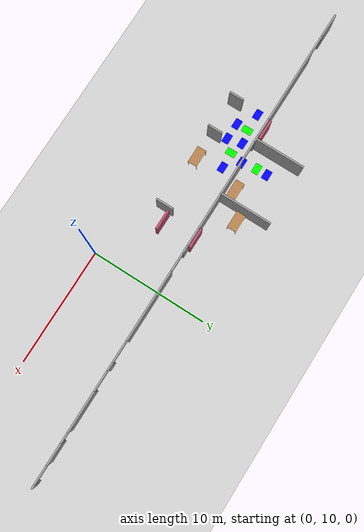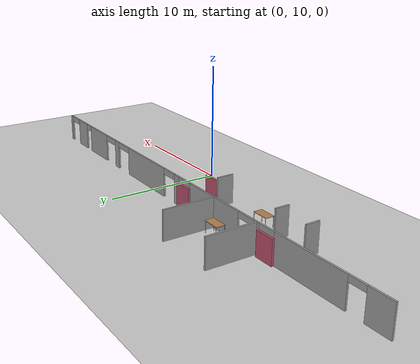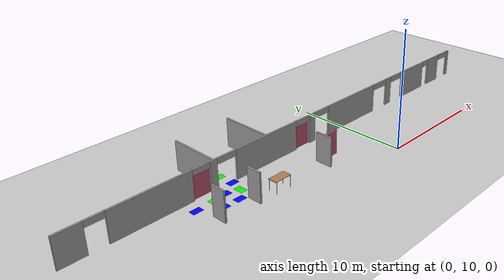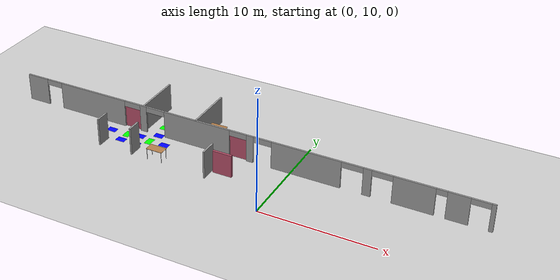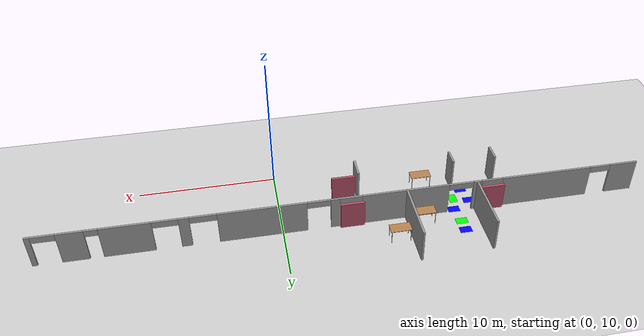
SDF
<sdf version="1.6">
 <world name="default">
  <model name="ground_plane">
   <pose>0 0 0.001 0 -0 0</pose>
   <static>1</static>
   <link name="link">
    <collision name="collision">
     <geometry><plane><normal>0 0 1</normal><size>100 100</size></plane></geometry>
     <surface><friction><ode><mu>100</mu><mu2>50</mu2></ode></friction></surface>
    </collision>
    <visual name="visual">
     <cast_shadows>0</cast_shadows>
     <geometry><plane><normal>0 0 1</normal><size>100 100</size></plane></geometry>
     <material>
      <script><uri>file://media/materials/scripts/gazebo.material</uri><name>Gazebo/Grey</name></script>
     </material>
    </visual>
   </link>
  </model>
  <model name="table_1">
   <static>1</static>
   <link name="link">
    <collision name="surface">
     <pose>0 0 1 0 -0 0</pose>
     <geometry><box><size>1.5 0.8 0.03</size></box></geometry>
     <surface><friction><ode><mu>0.6</mu><mu2>0.6</mu2></ode></friction></surface>
    </collision>
    <visual name="visual1">
     <pose>0 0 1 0 -0 0</pose>
     <geometry><box><size>1.5 0.8 0.03</size></box></geometry>
     <material>
      <script><uri>file://media/materials/scripts/gazebo.material</uri><name>Gazebo/Wood</name></script>
     </material>
    </visual>
    <collision name="front_left_leg">
     <pose>0.68 0.38 0.5 0 -0 0</pose>
     <geometry><cylinder><radius>0.02</radius><length>1</length></cylinder></geometry>
    </collision>
    <visual name="front_left_leg">
     <pose>0.68 0.38 0.5 0 -0 0</pose>
     <geometry><cylinder><radius>0.02</radius><length>1</length></cylinder></geometry>
     <material>
      <script><uri>file://media/materials/scripts/gazebo.material</uri><name>Gazebo/Grey</name></script>
     </material>
    </visual>
    <collision name="front_right_leg">
     <pose>0.68 -0.38 0.5 0 -0 0</pose>
     <geometry><cylinder><radius>0.02</radius><length>1</length></cylinder></geometry>
    </collision>
    <visual name="front_right_leg">
     <pose>0.68 -0.38 0.5 0 -0 0</pose>
     <geometry><cylinder><radius>0.02</radius><length>1</length></cylinder></geometry>
     <material>
      <script><uri>file://media/materials/scripts/gazebo.material</uri><name>Gazebo/Grey</name></script>
     </material>
    </visual>
    <collision name="back_right_leg">
     <pose>-0.68 -0.38 0.5 0 -0 0</pose>
     <geometry><cylinder><radius>0.02</radius><length>1</length></cylinder></geometry>
    </collision>
    <visual name="back_right_leg">
     <pose>-0.68 -0.38 0.5 0 -0 0</pose>
     <geometry><cylinder><radius>0.02</radius><length>1</length></cylinder></geometry>
     <material>
      <script><uri>file://media/materials/scripts/gazebo.material</uri><name>Gazebo/Grey</name></script>
     </material>
    </visual>
    <collision name="back_left_leg">
     <pose>-0.68 0.38 0.5 0 -0 0</pose>
     <geometry><cylinder><radius>0.02</radius><length>1</length></cylinder></geometry>
    </collision>
    <visual name="back_left_leg">
     <pose>-0.68 0.38 0.5 0 -0 0</pose>
     <geometry><cylinder><radius>0.02</radius><length>1</length></cylinder></geometry>
     <material>
      <script><uri>file://media/materials/scripts/gazebo.material</uri><name>Gazebo/Grey</name></script>
     </material>
    </visual>
   </link>
   <pose>-10.0366 16.6825 0.001 0 -0 0</pose>
  </model>
  <model name="table_3">
   <static>1</static>
   <link name="link">
    <collision name="surface">
     <pose>0 0 1 0 -0 0</pose>
     <geometry><box><size>1.5 0.8 0.03</size></box></geometry>
     <surface><friction><ode><mu>0.6</mu><mu2>0.6</mu2></ode></friction></surface>
    </collision>
    <visual name="visual1">
     <pose>0 0 1 0 -0 0</pose>
     <geometry><box><size>1.5 0.8 0.03</size></box></geometry>
     <material>
      <script><uri>file://media/materials/scripts/gazebo.material</uri><name>Gazebo/Wood</name></script>
     </material>
    </visual>
    <collision name="front_left_leg">
     <pose>0.68 0.38 0.5 0 -0 0</pose>
     <geometry><cylinder><radius>0.02</radius><length>1</length></cylinder></geometry>
    </collision>
    <visual name="front_left_leg">
     <pose>0.68 0.38 0.5 0 -0 0</pose>
     <geometry><cylinder><radius>0.02</radius><length>1</length></cylinder></geometry>
     <material>
      <script><uri>file://media/materials/scripts/gazebo.material</uri><name>Gazebo/Grey</name></script>
     </material>
    </visual>
    <collision name="front_right_leg">
     <pose>0.68 -0.38 0.5 0 -0 0</pose>
     <geometry><cylinder><radius>0.02</radius><length>1</length></cylinder></geometry>
    </collision>
    <visual name="front_right_leg">
     <pose>0.68 -0.38 0.5 0 -0 0</pose>
     <geometry><cylinder><radius>0.02</radius><length>1</length></cylinder></geometry>
     <material>
      <script><uri>file://media/materials/scripts/gazebo.material</uri><name>Gazebo/Grey</name></script>
     </material>
    </visual>
    <collision name="back_right_leg">
     <pose>-0.68 -0.38 0.5 0 -0 0</pose>
     <geometry><cylinder><radius>0.02</radius><length>1</length></cylinder></geometry>
    </collision>
    <visual name="back_right_leg">
     <pose>-0.68 -0.38 0.5 0 -0 0</pose>
     <geometry><cylinder><radius>0.02</radius><length>1</length></cylinder></geometry>
     <material>
      <script><uri>file://media/materials/scripts/gazebo.material</uri><name>Gazebo/Grey</name></script>
     </material>
    </visual>
    <collision name="back_left_leg">
     <pose>-0.68 0.38 0.5 0 -0 0</pose>
     <geometry><cylinder><radius>0.02</radius><length>1</length></cylinder></geometry>
    </collision>
    <visual name="back_left_leg">
     <pose>-0.68 0.38 0.5 0 -0 0</pose>
     <geometry><cylinder><radius>0.02</radius><length>1</length></cylinder></geometry>
     <material>
      <script><uri>file://media/materials/scripts/gazebo.material</uri><name>Gazebo/Grey</name></script>
     </material>
    </visual>
   </link>
   <pose>-10.736 12.6995 0.001 0 -0 0</pose>
  </model>
  <model name="table_5">
   <static>1</static>
   <link name="link">
    <collision name="surface">
     <pose>0 0 1 0 -0 0</pose>
     <geometry><box><size>1.5 0.8 0.03</size></box></geometry>
     <surface><friction><ode><mu>0.6</mu><mu2>0.6</mu2></ode></friction></surface>
    </collision>
    <visual name="visual1">
     <pose>0 0 1 0 -0 0</pose>
     <geometry><box><size>1.5 0.8 0.03</size></box></geometry>
     <material>
      <script><uri>file://media/materials/scripts/gazebo.material</uri><name>Gazebo/Wood</name></script>
     </material>
    </visual>
    <collision name="front_left_leg">
     <pose>0.68 0.38 0.5 0 -0 0</pose>
     <geometry><cylinder><radius>0.02</radius><length>1</length></cylinder></geometry>
    </collision>
    <visual name="front_left_leg">
     <pose>0.68 0.38 0.5 0 -0 0</pose>
     <geometry><cylinder><radius>0.02</radius><length>1</length></cylinder></geometry>
     <material>
      <script><uri>file://media/materials/scripts/gazebo.material</uri><name>Gazebo/Grey</name></script>
     </material>
    </visual>
    <collision name="front_right_leg">
     <pose>0.68 -0.38 0.5 0 -0 0</pose>
     <geometry><cylinder><radius>0.02</radius><length>1</length></cylinder></geometry>
    </collision>
    <visual name="front_right_leg">
     <pose>0.68 -0.38 0.5 0 -0 0</pose>
     <geometry><cylinder><radius>0.02</radius><length>1</length></cylinder></geometry>
     <material>
      <script><uri>file://media/materials/scripts/gazebo.material</uri><name>Gazebo/Grey</name></script>
     </material>
    </visual>
    <collision name="back_right_leg">
     <pose>-0.68 -0.38 0.5 0 -0 0</pose>
     <geometry><cylinder><radius>0.02</radius><length>1</length></cylinder></geometry>
    </collision>
    <visual name="back_right_leg">
     <pose>-0.68 -0.38 0.5 0 -0 0</pose>
     <geometry><cylinder><radius>0.02</radius><length>1</length></cylinder></geometry>
     <material>
      <script><uri>file://media/materials/scripts/gazebo.material</uri><name>Gazebo/Grey</name></script>
     </material>
    </visual>
    <collision name="back_left_leg">
     <pose>-0.68 0.38 0.5 0 -0 0</pose>
     <geometry><cylinder><radius>0.02</radius><length>1</length></cylinder></geometry>
    </collision>
    <visual name="back_left_leg">
     <pose>-0.68 0.38 0.5 0 -0 0</pose>
     <geometry><cylinder><radius>0.02</radius><length>1</length></cylinder></geometry>
     <material>
      <script><uri>file://media/materials/scripts/gazebo.material</uri><name>Gazebo/Grey</name></script>
     </material>
    </visual>
   </link>
   <pose>-7.90698 18.0796 0.001 0 -0 0</pose>
  </model>
  <model name="intersection_8">
   <link name="link">
    <pose>0 0 0.001 0 -0 0</pose>
    <inertial>
     <mass>0.0352517</mass>
     <inertia>
      <ixx>0.000997067</ixx>
      <ixy>0</ixy>
      <ixz>0</ixz>
      <iyy>0.00220147</iyy>
      <iyz>0</iyz>
      <izz>0.0031692</izz>
     </inertia>
     <pose>0 0 0.001 0 -0 0</pose>
    </inertial>
    <visual name="visual">
     <geometry><box><size>0.862743 0.578289 1e-06</size></box></geometry>
     <material>
      <script><name>Gazebo/Grey</name><uri>file://media/materials/scripts/gazebo.material</uri></script>
      <ambient>0 0 1 1</ambient>
      <diffuse>0 0 1 1</diffuse>
      <specular>0 0 1 1</specular>
      <emissive>0 0 1 1</emissive>
      <shader type="vertex"><normal_map>__default__</normal_map></shader>
     </material>
     <pose>0 0 0.001 0 -0 0</pose>
    </visual>
    <collision name="collision">
     <pose>0 0 0.001 0 -0 0</pose>
     <geometry><box><size>0.862743 0.578289 0.000477</size></box></geometry>
     <surface>
      <friction>
       <ode><mu>1</mu><mu2>1</mu2><fdir1>0 0 0</fdir1><slip1>0</slip1><slip2>0</slip2></ode>
       <torsional>
        <coefficient>1</coefficient>
        <patch_radius>0</patch_radius>
        <surface_radius>0</surface_radius>
        <use_patch_radius>1</use_patch_radius>
        <ode><slip>0</slip></ode>
       </torsional>
      </friction>
      <bounce><restitution_coefficient>0</restitution_coefficient><threshold>1e+06</threshold></bounce>
      <contact>
       <collide_without_contact>0</collide_without_contact>
       <collide_without_contact_bitmask>1</collide_without_contact_bitmask>
       <collide_bitmask>1</collide_bitmask>
       <ode>
        <soft_cfm>0</soft_cfm>
        <soft_erp>0.2</soft_erp>
        <kp>1e+13</kp>
        <kd>1</kd>
        <max_vel>0.01</max_vel>
        <min_depth>0</min_depth>
       </ode>
       <bullet>
        <split_impulse>1</split_impulse>
        <split_impulse_penetration_threshold>-0.01</split_impulse_penetration_threshold>
        <soft_cfm>0</soft_cfm>
        <soft_erp>0.2</soft_erp>
        <kp>1e+13</kp>
        <kd>1</kd>
       </bullet>
      </contact>
     </surface>
    </collision>
   </link>
   <static>1</static>
   <pose>-12.4748 15.8653 0 0 -0 0</pose>
  </model>
  <model name="intersection_9">
   <link name="link">
    <pose>0 0 0.001 0 -0 0</pose>
    <inertial>
     <mass>0.0352517</mass>
     <inertia>
      <ixx>0.000997067</ixx>
      <ixy>0</ixy>
      <ixz>0</ixz>
      <iyy>0.00220147</iyy>
      <iyz>0</iyz>
      <izz>0.0031692</izz>
     </inertia>
     <pose>0 0 0.001 0 -0 0</pose>
    </inertial>
    <visual name="visual">
     <geometry><box><size>0.862743 0.578289 1e-06</size></box></geometry>
     <material>
      <script><name>Gazebo/Grey</name><uri>file://media/materials/scripts/gazebo.material</uri></script>
      <ambient>0 0 1 1</ambient>
      <diffuse>0 0 1 1</diffuse>
      <specular>0 0 1 1</specular>
      <emissive>0 0 1 1</emissive>
      <shader type="vertex"><normal_map>__default__</normal_map></shader>
     </material>
     <pose>0 0 0.001 0 -0 0</pose>
    </visual>
    <collision name="collision">
     <pose>0 0 0.001 0 -0 0</pose>
     <geometry><box><size>0.862743 0.578289 0.000477</size></box></geometry>
     <surface>
      <friction>
       <ode><mu>1</mu><mu2>1</mu2><fdir1>0 0 0</fdir1><slip1>0</slip1><slip2>0</slip2></ode>
       <torsional>
        <coefficient>1</coefficient>
        <patch_radius>0</patch_radius>
        <surface_radius>0</surface_radius>
        <use_patch_radius>1</use_patch_radius>
        <ode><slip>0</slip></ode>
       </torsional>
      </friction>
      <bounce><restitution_coefficient>0</restitution_coefficient><threshold>1e+06</threshold></bounce>
      <contact>
       <collide_without_contact>0</collide_without_contact>
       <collide_without_contact_bitmask>1</collide_without_contact_bitmask>
       <collide_bitmask>1</collide_bitmask>
       <ode>
        <soft_cfm>0</soft_cfm>
        <soft_erp>0.2</soft_erp>
        <kp>1e+13</kp>
        <kd>1</kd>
        <max_vel>0.01</max_vel>
        <min_depth>0</min_depth>
       </ode>
       <bullet>
        <split_impulse>1</split_impulse>
        <split_impulse_penetration_threshold>-0.01</split_impulse_penetration_threshold>
        <soft_cfm>0</soft_cfm>
        <soft_erp>0.2</soft_erp>
        <kp>1e+13</kp>
        <kd>1</kd>
       </bullet>
      </contact>
     </surface>
    </collision>
   </link>
   <static>1</static>
   <pose>-15.0291 13.8591 0 0 -0 0</pose>
  </model>
  <model name="corridor_18">
   <link name="link">
    <pose>0 0 0.001 0 -0 0</pose>
    <inertial>
     <mass>0.0352517</mass>
     <inertia>
      <ixx>0.00099707</ixx>
      <ixy>0</ixy>
      <ixz>0</ixz>
      <iyy>0.00220147</iyy>
      <iyz>0</iyz>
      <izz>0.0031692</izz>
     </inertia>
     <pose>0 0 0.001 0 -0 0</pose>
    </inertial>
    <visual name="visual">
     <geometry><box><size>0.862743 0.578289 1e-06</size></box></geometry>
     <material>
      <script><name>Gazebo/Grey</name><uri>file://media/materials/scripts/gazebo.material</uri></script>
      <ambient>0 1 0 1</ambient>
      <diffuse>0 1 0 1</diffuse>
      <specular>0 1 0 1</specular>
      <emissive>0 1 0 1</emissive>
      <shader type="vertex"><normal_map>__default__</normal_map></shader>
     </material>
     <pose>0 0 0.001 0 -0 0</pose>
    </visual>
    <collision name="collision">
     <pose>0 0 0.001 0 -0 0</pose>
     <geometry><box><size>0.862743 0.578289 0.000477</size></box></geometry>
     <surface>
      <friction>
       <ode><mu>1</mu><mu2>1</mu2><fdir1>0 0 0</fdir1><slip1>0</slip1><slip2>0</slip2></ode>
       <torsional>
        <coefficient>1</coefficient>
        <patch_radius>0</patch_radius>
        <surface_radius>0</surface_radius>
        <use_patch_radius>1</use_patch_radius>
        <ode><slip>0</slip></ode>
       </torsional>
      </friction>
      <bounce><restitution_coefficient>0</restitution_coefficient><threshold>1e+06</threshold></bounce>
      <contact>
       <collide_without_contact>0</collide_without_contact>
       <collide_without_contact_bitmask>1</collide_without_contact_bitmask>
       <collide_bitmask>1</collide_bitmask>
       <ode>
        <soft_cfm>0</soft_cfm>
        <soft_erp>0.2</soft_erp>
        <kp>1e+13</kp>
        <kd>1</kd>
        <max_vel>0.01</max_vel>
        <min_depth>0</min_depth>
       </ode>
       <bullet>
        <split_impulse>1</split_impulse>
        <split_impulse_penetration_threshold>-0.01</split_impulse_penetration_threshold>
        <soft_cfm>0</soft_cfm>
        <soft_erp>0.2</soft_erp>
        <kp>1e+13</kp>
        <kd>1</kd>
       </bullet>
      </contact>
     </surface>
    </collision>
   </link>
   <static>1</static>
   <pose>-12.7267 14.7201 0 0 -0 1.58738</pose>
  </model>
  <model name="corridor_19">
   <link name="link">
    <pose>0 0 0.001 0 -0 0</pose>
    <inertial>
     <mass>0.0352517</mass>
     <inertia>
      <ixx>0.00099707</ixx>
      <ixy>0</ixy>
      <ixz>0</ixz>
      <iyy>0.00220147</iyy>
      <iyz>0</iyz>
      <izz>0.0031692</izz>
     </inertia>
     <pose>0 0 0.001 0 -0 0</pose>
    </inertial>
    <visual name="visual">
     <geometry><box><size>0.862743 0.578289 1e-06</size></box></geometry>
     <material>
      <script><name>Gazebo/Grey</name><uri>file://media/materials/scripts/gazebo.material</uri></script>
      <ambient>0 1 0 1</ambient>
      <diffuse>0 1 0 1</diffuse>
      <specular>0 1 0 1</specular>
      <emissive>0 1 0 1</emissive>
      <shader type="vertex"><normal_map>__default__</normal_map></shader>
     </material>
     <pose>0 0 0.001 0 -0 0</pose>
    </visual>
    <collision name="collision">
     <pose>0 0 0.001 0 -0 0</pose>
     <geometry><box><size>0.862743 0.578289 0.000477</size></box></geometry>
     <surface>
      <friction>
       <ode><mu>1</mu><mu2>1</mu2><fdir1>0 0 0</fdir1><slip1>0</slip1><slip2>0</slip2></ode>
       <torsional>
        <coefficient>1</coefficient>
        <patch_radius>0</patch_radius>
        <surface_radius>0</surface_radius>
        <use_patch_radius>1</use_patch_radius>
        <ode><slip>0</slip></ode>
       </torsional>
      </friction>
      <bounce><restitution_coefficient>0</restitution_coefficient><threshold>1e+06</threshold></bounce>
      <contact>
       <collide_without_contact>0</collide_without_contact>
       <collide_without_contact_bitmask>1</collide_without_contact_bitmask>
       <collide_bitmask>1</collide_bitmask>
       <ode>
        <soft_cfm>0</soft_cfm>
        <soft_erp>0.2</soft_erp>
        <kp>1e+13</kp>
        <kd>1</kd>
        <max_vel>0.01</max_vel>
        <min_depth>0</min_depth>
       </ode>
       <bullet>
        <split_impulse>1</split_impulse>
        <split_impulse_penetration_threshold>-0.01</split_impulse_penetration_threshold>
        <soft_cfm>0</soft_cfm>
        <soft_erp>0.2</soft_erp>
        <kp>1e+13</kp>
        <kd>1</kd>
       </bullet>
      </contact>
     </surface>
    </collision>
   </link>
   <static>1</static>
   <pose>-15.0256 14.8339 0 0 -0 1.58838</pose>
  </model>
  <model name="intersection_45">
   <link name="link">
    <pose>0 0 0.001 0 -0 0</pose>
    <inertial>
     <mass>0.0352517</mass>
     <inertia>
      <ixx>0.000997067</ixx>
      <ixy>0</ixy>
      <ixz>0</ixz>
      <iyy>0.00220147</iyy>
      <iyz>0</iyz>
      <izz>0.0031692</izz>
     </inertia>
     <pose>0 0 0.001 0 -0 0</pose>
    </inertial>
    <visual name="visual">
     <geometry><box><size>0.862743 0.578289 1e-06</size></box></geometry>
     <material>
      <script><name>Gazebo/Grey</name><uri>file://media/materials/scripts/gazebo.material</uri></script>
      <ambient>0 0 1 1</ambient>
      <diffuse>0 0 1 1</diffuse>
      <specular>0 0 1 1</specular>
      <emissive>0 0 1 1</emissive>
      <shader type="vertex"><normal_map>__default__</normal_map></shader>
     </material>
     <pose>0 0 0.001 0 -0 0</pose>
    </visual>
    <collision name="collision">
     <pose>0 0 0.001 0 -0 0</pose>
     <geometry><box><size>0.862743 0.578289 0.000477</size></box></geometry>
     <surface>
      <friction>
       <ode><mu>1</mu><mu2>1</mu2><fdir1>0 0 0</fdir1><slip1>0</slip1><slip2>0</slip2></ode>
       <torsional>
        <coefficient>1</coefficient>
        <patch_radius>0</patch_radius>
        <surface_radius>0</surface_radius>
        <use_patch_radius>1</use_patch_radius>
        <ode><slip>0</slip></ode>
       </torsional>
      </friction>
      <bounce><restitution_coefficient>0</restitution_coefficient><threshold>1e+06</threshold></bounce>
      <contact>
       <collide_without_contact>0</collide_without_contact>
       <collide_without_contact_bitmask>1</collide_without_contact_bitmask>
       <collide_bitmask>1</collide_bitmask>
       <ode>
        <soft_cfm>0</soft_cfm>
        <soft_erp>0.2</soft_erp>
        <kp>1e+13</kp>
        <kd>1</kd>
        <max_vel>0.01</max_vel>
        <min_depth>0</min_depth>
       </ode>
       <bullet>
        <split_impulse>1</split_impulse>
        <split_impulse_penetration_threshold>-0.01</split_impulse_penetration_threshold>
        <soft_cfm>0</soft_cfm>
        <soft_erp>0.2</soft_erp>
        <kp>1e+13</kp>
        <kd>1</kd>
       </bullet>
      </contact>
     </surface>
    </collision>
   </link>
   <static>1</static>
   <pose>-13.5669 13.8279 0 0 -0 0.007433</pose>
  </model>
  <model name="intersection_46">
   <link name="link">
    <pose>0 0 0.001 0 -0 0</pose>
    <inertial>
     <mass>0.0352517</mass>
     <inertia>
      <ixx>0.000997067</ixx>
      <ixy>0</ixy>
      <ixz>0</ixz>
      <iyy>0.00220147</iyy>
      <iyz>0</iyz>
      <izz>0.0031692</izz>
     </inertia>
     <pose>0 0 0.001 0 -0 0</pose>
    </inertial>
    <visual name="visual">
     <geometry><box><size>0.862743 0.578289 1e-06</size></box></geometry>
     <material>
      <script><name>Gazebo/Grey</name><uri>file://media/materials/scripts/gazebo.material</uri></script>
      <ambient>0 0 1 1</ambient>
      <diffuse>0 0 1 1</diffuse>
      <specular>0 0 1 1</specular>
      <emissive>0 0 1 1</emissive>
      <shader type="vertex"><normal_map>__default__</normal_map></shader>
     </material>
     <pose>0 0 0.001 0 -0 0</pose>
    </visual>
    <collision name="collision">
     <pose>0 0 0.001 0 -0 0</pose>
     <geometry><box><size>0.862743 0.578289 0.000477</size></box></geometry>
     <surface>
      <friction>
       <ode><mu>1</mu><mu2>1</mu2><fdir1>0 0 0</fdir1><slip1>0</slip1><slip2>0</slip2></ode>
       <torsional>
        <coefficient>1</coefficient>
        <patch_radius>0</patch_radius>
        <surface_radius>0</surface_radius>
        <use_patch_radius>1</use_patch_radius>
        <ode><slip>0</slip></ode>
       </torsional>
      </friction>
      <bounce><restitution_coefficient>0</restitution_coefficient><threshold>1e+06</threshold></bounce>
      <contact>
       <collide_without_contact>0</collide_without_contact>
       <collide_without_contact_bitmask>1</collide_without_contact_bitmask>
       <collide_bitmask>1</collide_bitmask>
       <ode>
        <soft_cfm>0</soft_cfm>
        <soft_erp>0.2</soft_erp>
        <kp>1e+13</kp>
        <kd>1</kd>
        <max_vel>0.01</max_vel>
        <min_depth>0</min_depth>
       </ode>
       <bullet>
        <split_impulse>1</split_impulse>
        <split_impulse_penetration_threshold>-0.01</split_impulse_penetration_threshold>
        <soft_cfm>0</soft_cfm>
        <soft_erp>0.2</soft_erp>
        <kp>1e+13</kp>
        <kd>1</kd>
       </bullet>
      </contact>
     </surface>
    </collision>
   </link>
   <static>1</static>
   <pose>-16.6003 14.8704 0 0 -0 0</pose>
  </model>
  <model name="intersection_4">
   <link name="link">
    <pose>0 0 0.001 0 -0 0</pose>
    <inertial>
     <mass>0.0352517</mass>
     <inertia>
      <ixx>0.000997067</ixx>
      <ixy>0</ixy>
      <ixz>0</ixz>
      <iyy>0.00220147</iyy>
      <iyz>0</iyz>
      <izz>0.0031692</izz>
     </inertia>
     <pose>0 0 0.001 0 -0 0</pose>
    </inertial>
    <visual name="visual">
     <geometry><box><size>0.862743 0.578289 1e-06</size></box></geometry>
     <material>
      <script><name>Gazebo/Grey</name><uri>file://media/materials/scripts/gazebo.material</uri></script>
      <ambient>0 0 1 1</ambient>
      <diffuse>0 0 1 1</diffuse>
      <specular>0 0 1 1</specular>
      <emissive>0 0 1 1</emissive>
      <shader type="vertex"><normal_map>__default__</normal_map></shader>
     </material>
     <pose>0 0 0.001 0 -0 0</pose>
    </visual>
    <collision name="collision">
     <pose>0 0 0.001 0 -0 0</pose>
     <geometry><box><size>0.862743 0.578289 0.000477</size></box></geometry>
     <surface>
      <friction>
       <ode><mu>1</mu><mu2>1</mu2><fdir1>0 0 0</fdir1><slip1>0</slip1><slip2>0</slip2></ode>
       <torsional>
        <coefficient>1</coefficient>
        <patch_radius>0</patch_radius>
        <surface_radius>0</surface_radius>
        <use_patch_radius>1</use_patch_radius>
        <ode><slip>0</slip></ode>
       </torsional>
      </friction>
      <bounce><restitution_coefficient>0</restitution_coefficient><threshold>1e+06</threshold></bounce>
      <contact>
       <collide_without_contact>0</collide_without_contact>
       <collide_without_contact_bitmask>1</collide_without_contact_bitmask>
       <collide_bitmask>1</collide_bitmask>
       <ode>
        <soft_cfm>0</soft_cfm>
        <soft_erp>0.2</soft_erp>
        <kp>1e+13</kp>
        <kd>1</kd>
        <max_vel>0.01</max_vel>
        <min_depth>0</min_depth>
       </ode>
       <bullet>
        <split_impulse>1</split_impulse>
        <split_impulse_penetration_threshold>-0.01</split_impulse_penetration_threshold>
        <soft_cfm>0</soft_cfm>
        <soft_erp>0.2</soft_erp>
        <kp>1e+13</kp>
        <kd>1</kd>
       </bullet>
      </contact>
     </surface>
    </collision>
   </link>
   <static>1</static>
   <pose>-11.3064 14.7821 0 0 -0 0</pose>
  </model>
  <model name="doorOutside_8">
   <link name="link">
    <pose>0.155539 -0.366282 0.216958 0 -0 0</pose>
    <inertial>
     <mass>2.13199</mass>
     <inertia>
      <ixx>0.452656</ixx>
      <ixy>0</ixy>
      <ixz>0</ixz>
      <iyy>0.796738</iyy>
      <iyz>0</iyz>
      <izz>0.699414</izz>
     </inertia>
    </inertial>
    <visual name="visual">
     <geometry><box><size>1.71368 0.198843 2.05986</size></box></geometry>
     <material>
      <script><name>Gazebo/Grey</name><uri>file://media/materials/scripts/gazebo.material</uri></script>
      <ambient>0.7 0.3 0.4 1</ambient>
      <diffuse>0.7 0.7 0.7 1</diffuse>
      <specular>0.01 0.01 0.01 1</specular>
      <emissive>0 0 0 1</emissive>
      <shader type="vertex"><normal_map>__default__</normal_map></shader>
      <lighting>0</lighting>
     </material>
    </visual>
    <collision name="collision">
     <geometry><box><size>1.71368 0.198843 2.05986</size></box></geometry>
     <surface>
      <friction>
       <ode><mu>1</mu><mu2>1</mu2><fdir1>0 0 0</fdir1><slip1>0</slip1><slip2>0</slip2></ode>
       <torsional>
        <coefficient>1</coefficient>
        <patch_radius>0</patch_radius>
        <surface_radius>0</surface_radius>
        <use_patch_radius>1</use_patch_radius>
        <ode><slip>0</slip></ode>
       </torsional>
      </friction>
      <bounce><restitution_coefficient>0</restitution_coefficient><threshold>1e+06</threshold></bounce>
      <contact>
       <collide_without_contact>0</collide_without_contact>
       <collide_without_contact_bitmask>1</collide_without_contact_bitmask>
       <collide_bitmask>1</collide_bitmask>
       <ode>
        <soft_cfm>0</soft_cfm>
        <soft_erp>0.2</soft_erp>
        <kp>1e+13</kp>
        <kd>1</kd>
        <max_vel>0.01</max_vel>
        <min_depth>0</min_depth>
       </ode>
       <bullet>
        <split_impulse>1</split_impulse>
        <split_impulse_penetration_threshold>-0.01</split_impulse_penetration_threshold>
        <soft_cfm>0</soft_cfm>
        <soft_erp>0.2</soft_erp>
        <kp>1e+13</kp>
        <kd>1</kd>
       </bullet>
      </contact>
     </surface>
    </collision>
   </link>
   <static>0</static>
   <pose>-15.3015 16.5448 0.812971 -0 2e-06 -0.0009</pose>
  </model>
  <model name="doorOutside_10">
   <link name="link">
    <pose>0.155539 -0.366282 0.216958 0 -0 0</pose>
    <inertial>
     <mass>2.13199</mass>
     <inertia>
      <ixx>0.452656</ixx>
      <ixy>0</ixy>
      <ixz>0</ixz>
      <iyy>0.796738</iyy>
      <iyz>0</iyz>
      <izz>0.699414</izz>
     </inertia>
    </inertial>
    <visual name="visual">
     <geometry><box><size>1.71368 0.198843 2.05986</size></box></geometry>
     <material>
      <script><name>Gazebo/Grey</name><uri>file://media/materials/scripts/gazebo.material</uri></script>
      <ambient>0.7 0.3 0.4 1</ambient>
      <diffuse>0.7 0.7 0.7 1</diffuse>
      <specular>0.01 0.01 0.01 1</specular>
      <emissive>0 0 0 1</emissive>
      <shader type="vertex"><normal_map>__default__</normal_map></shader>
      <lighting>0</lighting>
     </material>
    </visual>
    <collision name="collision">
     <geometry><box><size>1.71368 0.198843 2.05986</size></box></geometry>
     <surface>
      <friction>
       <ode><mu>1</mu><mu2>1</mu2><fdir1>0 0 0</fdir1><slip1>0</slip1><slip2>0</slip2></ode>
       <torsional>
        <coefficient>1</coefficient>
        <patch_radius>0</patch_radius>
        <surface_radius>0</surface_radius>
        <use_patch_radius>1</use_patch_radius>
        <ode><slip>0</slip></ode>
       </torsional>
      </friction>
      <bounce><restitution_coefficient>0</restitution_coefficient><threshold>1e+06</threshold></bounce>
      <contact>
       <collide_without_contact>0</collide_without_contact>
       <collide_without_contact_bitmask>1</collide_without_contact_bitmask>
       <collide_bitmask>1</collide_bitmask>
       <ode>
        <soft_cfm>0</soft_cfm>
        <soft_erp>0.2</soft_erp>
        <kp>1e+13</kp>
        <kd>1</kd>
        <max_vel>0.01</max_vel>
        <min_depth>0</min_depth>
       </ode>
       <bullet>
        <split_impulse>1</split_impulse>
        <split_impulse_penetration_threshold>-0.01</split_impulse_penetration_threshold>
        <soft_cfm>0</soft_cfm>
        <soft_erp>0.2</soft_erp>
        <kp>1e+13</kp>
        <kd>1</kd>
       </bullet>
      </contact>
     </surface>
    </collision>
   </link>
   <static>0</static>
   <pose>-5.08298 16.5321 0.812967 0 -5e-06 -5.2e-05</pose>
  </model>
  <model name="Se1_cut">
   <pose>3.62364 13.9276 0 0 -0 0</pose>
   <link name="Wall_25">
    <collision name="Wall_25_Collision">
     <geometry><box><size>1.25 0.15 2.5</size></box></geometry>
     <pose>0 0 1.25 0 -0 0</pose>
    </collision>
    <visual name="Wall_25_Visual">
     <pose>0 0 1.25 0 -0 0</pose>
     <geometry><box><size>1.25 0.15 2.5</size></box></geometry>
     <material>
      <script><uri>file://media/materials/scripts/gazebo.material</uri><name>Gazebo/Grey</name></script>
      <ambient>1 1 1 1</ambient>
     </material>
    </visual>
    <pose>-19.781 -1.01852 0 0 0 -1.5708</pose>
   </link>
   <link name="Wall_27">
    <collision name="Wall_27_Collision">
     <geometry><box><size>1.25 0.15 2.5</size></box></geometry>
     <pose>0 0 1.25 0 -0 0</pose>
    </collision>
    <visual name="Wall_27_Visual">
     <pose>0 0 1.25 0 -0 0</pose>
     <geometry><box><size>1.25 0.15 2.5</size></box></geometry>
     <material>
      <script><uri>file://media/materials/scripts/gazebo.material</uri><name>Gazebo/Grey</name></script>
      <ambient>1 1 1 1</ambient>
     </material>
    </visual>
    <pose>-16.601 -1.02852 0 0 0 -1.5708</pose>
   </link>
   <link name="Wall_31">
    <collision name="Wall_31_Collision">
     <geometry><box><size>1.5 0.15 2.5</size></box></geometry>
     <pose>0 0 1.25 0 -0 0</pose>
    </collision>
    <visual name="Wall_31_Visual">
     <pose>0 0 1.25 0 -0 0</pose>
     <geometry><box><size>1.5 0.15 2.5</size></box></geometry>
     <material>
      <script><uri>file://media/materials/scripts/gazebo.material</uri><name>Gazebo/Grey</name></script>
      <ambient>1 1 1 1</ambient>
     </material>
    </visual>
    <pose>-9.481 -1.13352 0 0 0 -1.5708</pose>
   </link>
   <link name="Wall_46">
    <pose>-8.2779 2.06374 0 0 -0 0</pose>
    <visual name="Wall_46_Visual_0">
     <pose>-20.462 0 1.25 0 -0 0</pose>
     <geometry><box><size>2.07596 0.15 2.5</size></box></geometry>
     <material>
      <script><uri>file://media/materials/scripts/gazebo.material</uri><name>Gazebo/Grey</name></script>
      <ambient>1 1 1 1</ambient>
     </material>
    </visual>
    <collision name="Wall_46_Collision_0">
     <geometry><box><size>2.07596 0.15 2.5</size></box></geometry>
     <pose>-20.462 0 1.25 0 -0 0</pose>
    </collision>
    <visual name="Wall_46_Visual_1">
     <pose>-14.5766 0 1.25 0 -0 0</pose>
     <geometry><box><size>6.67122 0.15 2.5</size></box></geometry>
     <material>
      <script><uri>file://media/materials/scripts/gazebo.material</uri><name>Gazebo/Grey</name></script>
      <ambient>1 1 1 1</ambient>
     </material>
    </visual>
    <collision name="Wall_46_Collision_1">
     <geometry><box><size>6.67122 0.15 2.5</size></box></geometry>
     <pose>-14.5766 0 1.25 0 -0 0</pose>
    </collision>
    <visual name="Wall_46_Visual_2">
     <pose>-9.36125 0 1.25 0 -0 0</pose>
     <geometry><box><size>0.629513 0.15 2.5</size></box></geometry>
     <material>
      <script><uri>file://media/materials/scripts/gazebo.material</uri><name>Gazebo/Grey</name></script>
      <ambient>1 1 1 1</ambient>
     </material>
    </visual>
    <collision name="Wall_46_Collision_2">
     <geometry><box><size>0.629513 0.15 2.5</size></box></geometry>
     <pose>-9.36125 0 1.25 0 -0 0</pose>
    </collision>
    <visual name="Wall_46_Visual_3">
     <pose>-4.12766 0 1.25 0 -0 0</pose>
     <geometry><box><size>6.28205 0.15 2.5</size></box></geometry>
     <material>
      <script><uri>file://media/materials/scripts/gazebo.material</uri><name>Gazebo/Grey</name></script>
      <ambient>1 1 1 1</ambient>
     </material>
    </visual>
    <collision name="Wall_46_Collision_3">
     <geometry><box><size>6.28205 0.15 2.5</size></box></geometry>
     <pose>-4.12766 0 1.25 0 -0 0</pose>
    </collision>
    <visual name="Wall_46_Visual_4">
     <pose>0.926374 0 1.25 0 -0 0</pose>
     <geometry><box><size>0.642812 0.15 2.5</size></box></geometry>
     <material>
      <script><uri>file://media/materials/scripts/gazebo.material</uri><name>Gazebo/Grey</name></script>
      <ambient>1 1 1 1</ambient>
     </material>
    </visual>
    <collision name="Wall_46_Collision_4">
     <geometry><box><size>0.642812 0.15 2.5</size></box></geometry>
     <pose>0.926374 0 1.25 0 -0 0</pose>
    </collision>
    <visual name="Wall_46_Visual_5">
     <pose>5.96711 0 1.25 0 -0 0</pose>
     <geometry><box><size>6.14905 0.15 2.5</size></box></geometry>
     <material>
      <script><uri>file://media/materials/scripts/gazebo.material</uri><name>Gazebo/Grey</name></script>
      <ambient>1 1 1 1</ambient>
     </material>
    </visual>
    <collision name="Wall_46_Collision_5">
     <geometry><box><size>6.14905 0.15 2.5</size></box></geometry>
     <pose>5.96711 0 1.25 0 -0 0</pose>
    </collision>
    <visual name="Wall_46_Visual_6">
     <pose>11.2606 0 1.25 0 -0 0</pose>
     <geometry><box><size>0.722612 0.15 2.5</size></box></geometry>
     <material>
      <script><uri>file://media/materials/scripts/gazebo.material</uri><name>Gazebo/Grey</name></script>
      <ambient>1 1 1 1</ambient>
     </material>
    </visual>
    <collision name="Wall_46_Collision_6">
     <geometry><box><size>0.722612 0.15 2.5</size></box></geometry>
     <pose>11.2606 0 1.25 0 -0 0</pose>
    </collision>
    <visual name="Wall_46_Visual_7">
     <pose>15.1043 0 1.25 0 -0 0</pose>
     <geometry><box><size>3.46243 0.15 2.5</size></box></geometry>
     <material>
      <script><uri>file://media/materials/scripts/gazebo.material</uri><name>Gazebo/Grey</name></script>
      <ambient>1 1 1 1</ambient>
     </material>
    </visual>
    <collision name="Wall_46_Collision_7">
     <geometry><box><size>3.46243 0.15 2.5</size></box></geometry>
     <pose>15.1043 0 1.25 0 -0 0</pose>
    </collision>
    <visual name="Wall_46_Visual_8">
     <pose>18.6421 0 1.25 0 -0 0</pose>
     <geometry><box><size>1.81322 0.15 2.5</size></box></geometry>
     <material>
      <script><uri>file://media/materials/scripts/gazebo.material</uri><name>Gazebo/Grey</name></script>
      <ambient>1 1 1 1</ambient>
     </material>
    </visual>
    <collision name="Wall_46_Collision_8">
     <geometry><box><size>1.81322 0.15 2.5</size></box></geometry>
     <pose>18.6421 0 1.25 0 -0 0</pose>
    </collision>
    <visual name="Wall_46_Visual_9">
     <pose>21.3202 0 1.25 0 -0 0</pose>
     <geometry><box><size>0.359679 0.15 2.5</size></box></geometry>
     <material>
      <script><uri>file://media/materials/scripts/gazebo.material</uri><name>Gazebo/Grey</name></script>
      <ambient>1 1 1 1</ambient>
     </material>
    </visual>
    <collision name="Wall_46_Collision_9">
     <geometry><box><size>0.359679 0.15 2.5</size></box></geometry>
     <pose>21.3202 0 1.25 0 -0 0</pose>
    </collision>
    <visual name="Wall_46_Visual_10">
     <pose>-18.6681 0 2.25 0 -0 0</pose>
     <geometry><box><size>1.51181 0.15 0.5</size></box></geometry>
     <material>
      <script><uri>file://media/materials/scripts/gazebo.material</uri><name>Gazebo/Grey</name></script>
      <ambient>1 1 1 1</ambient>
     </material>
    </visual>
    <collision name="Wall_46_Collision_10">
     <geometry><box><size>1.51181 0.15 0.5</size></box></geometry>
     <pose>-18.6681 0 2.25 0 -0 0</pose>
    </collision>
    <visual name="Wall_46_Visual_11">
     <pose>-10.4585 0 2.25 0 -0 0</pose>
     <geometry><box><size>1.565 0.15 0.5</size></box></geometry>
     <material>
      <script><uri>file://media/materials/scripts/gazebo.material</uri><name>Gazebo/Grey</name></script>
      <ambient>1 1 1 1</ambient>
     </material>
    </visual>
    <collision name="Wall_46_Collision_11">
     <geometry><box><size>1.565 0.15 0.5</size></box></geometry>
     <pose>-10.4585 0 2.25 0 -0 0</pose>
    </collision>
    <visual name="Wall_46_Visual_12">
     <pose>-8.15759 0 2.25 0 -0 0</pose>
     <geometry><box><size>1.77781 0.15 0.5</size></box></geometry>
     <material>
      <script><uri>file://media/materials/scripts/gazebo.material</uri><name>Gazebo/Grey</name></script>
      <ambient>1 1 1 1</ambient>
     </material>
    </visual>
    <collision name="Wall_46_Collision_12">
     <geometry><box><size>1.77781 0.15 0.5</size></box></geometry>
     <pose>-8.15759 0 2.25 0 -0 0</pose>
    </collision>
    <visual name="Wall_46_Visual_13">
     <pose>-0.190835 0 2.25 0 -0 0</pose>
     <geometry><box><size>1.5916 0.15 0.5</size></box></geometry>
     <material>
      <script><uri>file://media/materials/scripts/gazebo.material</uri><name>Gazebo/Grey</name></script>
      <ambient>1 1 1 1</ambient>
     </material>
    </visual>
    <collision name="Wall_46_Collision_13">
     <geometry><box><size>1.5916 0.15 0.5</size></box></geometry>
     <pose>-0.190835 0 2.25 0 -0 0</pose>
    </collision>
    <visual name="Wall_46_Visual_14">
     <pose>2.07018 0 2.25 0 -0 0</pose>
     <geometry><box><size>1.64481 0.15 0.5</size></box></geometry>
     <material>
      <script><uri>file://media/materials/scripts/gazebo.material</uri><name>Gazebo/Grey</name></script>
      <ambient>1 1 1 1</ambient>
     </material>
    </visual>
    <collision name="Wall_46_Collision_14">
     <geometry><box><size>1.64481 0.15 0.5</size></box></geometry>
     <pose>2.07018 0 2.25 0 -0 0</pose>
    </collision>
    <visual name="Wall_46_Visual_15">
     <pose>9.97044 0 2.25 0 -0 0</pose>
     <geometry><box><size>1.85761 0.15 0.5</size></box></geometry>
     <material>
      <script><uri>file://media/materials/scripts/gazebo.material</uri><name>Gazebo/Grey</name></script>
      <ambient>1 1 1 1</ambient>
     </material>
    </visual>
    <collision name="Wall_46_Collision_15">
     <geometry><box><size>1.85761 0.15 0.5</size></box></geometry>
     <pose>9.97044 0 2.25 0 -0 0</pose>
    </collision>
    <visual name="Wall_46_Visual_16">
     <pose>12.4975 0 2.25 0 -0 0</pose>
     <geometry><box><size>1.75121 0.15 0.5</size></box></geometry>
     <material>
      <script><uri>file://media/materials/scripts/gazebo.material</uri><name>Gazebo/Grey</name></script>
      <ambient>1 1 1 1</ambient>
     </material>
    </visual>
    <collision name="Wall_46_Collision_16">
     <geometry><box><size>1.75121 0.15 0.5</size></box></geometry>
     <pose>12.4975 0 2.25 0 -0 0</pose>
    </collision>
    <visual name="Wall_46_Visual_17">
     <pose>17.2855 0 2.25 0 -0 0</pose>
     <geometry><box><size>0.9 0.15 0.5</size></box></geometry>
     <material>
      <script><uri>file://media/materials/scripts/gazebo.material</uri><name>Gazebo/Grey</name></script>
      <ambient>1 1 1 1</ambient>
     </material>
    </visual>
    <collision name="Wall_46_Collision_17">
     <geometry><box><size>0.9 0.15 0.5</size></box></geometry>
     <pose>17.2855 0 2.25 0 -0 0</pose>
    </collision>
    <visual name="Wall_46_Visual_18">
     <pose>20.3445 0 2.25 0 -0 0</pose>
     <geometry><box><size>1.5916 0.15 0.5</size></box></geometry>
     <material>
      <script><uri>file://media/materials/scripts/gazebo.material</uri><name>Gazebo/Grey</name></script>
      <ambient>1 1 1 1</ambient>
     </material>
    </visual>
    <collision name="Wall_46_Collision_18">
     <geometry><box><size>1.5916 0.15 0.5</size></box></geometry>
     <pose>20.3445 0 2.25 0 -0 0</pose>
    </collision>
   </link>
   <link name="Wall_51">
    <collision name="Wall_51_Collision">
     <geometry><box><size>4.25 0.15 2.5</size></box></geometry>
     <pose>0 0 1.25 0 -0 0</pose>
    </collision>
    <visual name="Wall_51_Visual">
     <pose>0 0 1.25 0 -0 0</pose>
     <geometry><box><size>4.25 0.15 2.5</size></box></geometry>
     <material>
      <script><uri>file://media/materials/scripts/gazebo.material</uri><name>Gazebo/Grey</name></script>
      <ambient>1 1 1 1</ambient>
     </material>
    </visual>
    <pose>-17.6222 4.24038 0 0 0 -1.5708</pose>
   </link>
   <link name="Wall_53">
    <collision name="Wall_53_Collision">
     <geometry><box><size>4.5 0.15 2.5</size></box></geometry>
     <pose>0 0 1.25 0 -0 0</pose>
    </collision>
    <visual name="Wall_53_Visual">
     <pose>0 0 1.25 0 -0 0</pose>
     <geometry><box><size>4.5 0.15 2.5</size></box></geometry>
     <material>
      <script><uri>file://media/materials/scripts/gazebo.material</uri><name>Gazebo/Grey</name></script>
      <ambient>1 1 1 1</ambient>
     </material>
    </visual>
    <pose>-12.4852 4.25279 0 0 0 -1.5708</pose>
   </link>
   <static>1</static>
  </model>
  <model name="doorOutside_11">
   <link name="link">
    <pose>0.155539 -0.366282 0.216958 0 -0 0</pose>
    <inertial>
     <mass>2.13199</mass>
     <inertia>
      <ixx>0.452656</ixx>
      <ixy>0</ixy>
      <ixz>0</ixz>
      <iyy>0.796738</iyy>
      <iyz>0</iyz>
      <izz>0.699414</izz>
     </inertia>
    </inertial>
    <visual name="visual">
     <geometry><box><size>1.71368 0.198843 2.05986</size></box></geometry>
     <material>
      <script><name>Gazebo/Grey</name><uri>file://media/materials/scripts/gazebo.material</uri></script>
      <ambient>0.7 0.3 0.4 1</ambient>
      <diffuse>0.7 0.7 0.7 1</diffuse>
      <specular>0.01 0.01 0.01 1</specular>
      <emissive>0 0 0 1</emissive>
      <shader type="vertex"><normal_map>__default__</normal_map></shader>
      <lighting>0</lighting>
     </material>
    </visual>
    <collision name="collision">
     <geometry><box><size>1.71368 0.198843 2.05986</size></box></geometry>
     <surface>
      <friction>
       <ode><mu>1</mu><mu2>1</mu2><fdir1>0 0 0</fdir1><slip1>0</slip1><slip2>0</slip2></ode>
       <torsional>
        <coefficient>1</coefficient>
        <patch_radius>0</patch_radius>
        <surface_radius>0</surface_radius>
        <use_patch_radius>1</use_patch_radius>
        <ode><slip>0</slip></ode>
       </torsional>
      </friction>
      <bounce><restitution_coefficient>0</restitution_coefficient><threshold>1e+06</threshold></bounce>
      <contact>
       <collide_without_contact>0</collide_without_contact>
       <collide_without_contact_bitmask>1</collide_without_contact_bitmask>
       <collide_bitmask>1</collide_bitmask>
       <ode>
        <soft_cfm>0</soft_cfm>
        <soft_erp>0.2</soft_erp>
        <kp>1e+13</kp>
        <kd>1</kd>
        <max_vel>0.01</max_vel>
        <min_depth>0</min_depth>
       </ode>
       <bullet>
        <split_impulse>1</split_impulse>
        <split_impulse_penetration_threshold>-0.01</split_impulse_penetration_threshold>
        <soft_cfm>0</soft_cfm>
        <soft_erp>0.2</soft_erp>
        <kp>1e+13</kp>
        <kd>1</kd>
       </bullet>
      </contact>
     </surface>
    </collision>
   </link>
   <static>0</static>
   <pose>-4.94277 13.621 0.812967 0 -5e-06 6.9e-05</pose>
  </model>
  <model name="intersection_59">
   <link name="link">
    <pose>0 0 0.001 0 -0 0</pose>
    <inertial>
     <mass>0.0352517</mass>
     <inertia>
      <ixx>0.000997067</ixx>
      <ixy>0</ixy>
      <ixz>0</ixz>
      <iyy>0.00220147</iyy>
      <iyz>0</iyz>
      <izz>0.0031692</izz>
     </inertia>
     <pose>0 0 0.001 0 -0 0</pose>
    </inertial>
    <visual name="visual">
     <geometry><box><size>0.862743 0.578289 1e-06</size></box></geometry>
     <material>
      <script><name>Gazebo/Grey</name><uri>file://media/materials/scripts/gazebo.material</uri></script>
      <ambient>0 0 1 1</ambient>
      <diffuse>0 0 1 1</diffuse>
      <specular>0 0 1 1</specular>
      <emissive>0 0 1 1</emissive>
      <shader type="vertex"><normal_map>__default__</normal_map></shader>
     </material>
     <pose>0 0 0.001 0 -0 0</pose>
    </visual>
    <collision name="collision">
     <pose>0 0 0.001 0 -0 0</pose>
     <geometry><box><size>0.862743 0.578289 0.000477</size></box></geometry>
     <surface>
      <friction>
       <ode><mu>1</mu><mu2>1</mu2><fdir1>0 0 0</fdir1><slip1>0</slip1><slip2>0</slip2></ode>
       <torsional>
        <coefficient>1</coefficient>
        <patch_radius>0</patch_radius>
        <surface_radius>0</surface_radius>
        <use_patch_radius>1</use_patch_radius>
        <ode><slip>0</slip></ode>
       </torsional>
      </friction>
      <bounce><restitution_coefficient>0</restitution_coefficient><threshold>1e+06</threshold></bounce>
      <contact>
       <collide_without_contact>0</collide_without_contact>
       <collide_without_contact_bitmask>1</collide_without_contact_bitmask>
       <collide_bitmask>1</collide_bitmask>
       <ode>
        <soft_cfm>0</soft_cfm>
        <soft_erp>0.2</soft_erp>
        <kp>1e+13</kp>
        <kd>1</kd>
        <max_vel>0.01</max_vel>
        <min_depth>0</min_depth>
       </ode>
       <bullet>
        <split_impulse>1</split_impulse>
        <split_impulse_penetration_threshold>-0.01</split_impulse_penetration_threshold>
        <soft_cfm>0</soft_cfm>
        <soft_erp>0.2</soft_erp>
        <kp>1e+13</kp>
        <kd>1</kd>
       </bullet>
      </contact>
     </surface>
    </collision>
   </link>
   <static>1</static>
   <pose>-12.6728 18.111 0 0 -0 0</pose>
  </model>
  <model name="intersection_45_clone">
   <link name="link">
    <pose>0 0 0.001 0 -0 0</pose>
    <inertial>
     <mass>0.0352517</mass>
     <inertia>
      <ixx>0.000997067</ixx>
      <ixy>0</ixy>
      <ixz>0</ixz>
      <iyy>0.00220147</iyy>
      <iyz>0</iyz>
      <izz>0.0031692</izz>
     </inertia>
     <pose>0 0 0.001 0 -0 0</pose>
    </inertial>
    <visual name="visual">
     <geometry><box><size>0.862743 0.578289 1e-06</size></box></geometry>
     <material>
      <script><name>Gazebo/Grey</name><uri>file://media/materials/scripts/gazebo.material</uri></script>
      <ambient>0 0 1 1</ambient>
      <diffuse>0 0 1 1</diffuse>
      <specular>0 0 1 1</specular>
      <emissive>0 0 1 1</emissive>
      <shader type="vertex"><normal_map>__default__</normal_map></shader>
     </material>
     <pose>0 0 0.001 0 -0 0</pose>
    </visual>
    <collision name="collision">
     <pose>0 0 0.001 0 -0 0</pose>
     <geometry><box><size>0.862743 0.578289 0.000477</size></box></geometry>
     <surface>
      <friction>
       <ode><mu>1</mu><mu2>1</mu2><fdir1>0 0 0</fdir1><slip1>0</slip1><slip2>0</slip2></ode>
       <torsional>
        <coefficient>1</coefficient>
        <patch_radius>0</patch_radius>
        <surface_radius>0</surface_radius>
        <use_patch_radius>1</use_patch_radius>
        <ode><slip>0</slip></ode>
       </torsional>
      </friction>
      <bounce><restitution_coefficient>0</restitution_coefficient><threshold>1e+06</threshold></bounce>
      <contact>
       <collide_without_contact>0</collide_without_contact>
       <collide_without_contact_bitmask>1</collide_without_contact_bitmask>
       <collide_bitmask>1</collide_bitmask>
       <ode>
        <soft_cfm>0</soft_cfm>
        <soft_erp>0.2</soft_erp>
        <kp>1e+13</kp>
        <kd>1</kd>
        <max_vel>0.01</max_vel>
        <min_depth>0</min_depth>
       </ode>
       <bullet>
        <split_impulse>1</split_impulse>
        <split_impulse_penetration_threshold>-0.01</split_impulse_penetration_threshold>
        <soft_cfm>0</soft_cfm>
        <soft_erp>0.2</soft_erp>
        <kp>1e+13</kp>
        <kd>1</kd>
       </bullet>
      </contact>
     </surface>
    </collision>
   </link>
   <static>1</static>
   <pose>-13.8667 15.0812 0 0 -0 3.13643</pose>
  </model>
  <model name="corridor_0_clone_1">
   <link name="link">
    <pose>0 0 0.001 0 -0 0</pose>
    <inertial>
     <mass>0.0352517</mass>
     <inertia>
      <ixx>0.00099707</ixx>
      <ixy>0</ixy>
      <ixz>0</ixz>
      <iyy>0.00220147</iyy>
      <iyz>0</iyz>
      <izz>0.0031692</izz>
     </inertia>
     <pose>0 0 0.001 0 -0 0</pose>
    </inertial>
    <visual name="visual">
     <geometry><box><size>0.862743 0.578289 1e-06</size></box></geometry>
     <material>
      <script><name>Gazebo/Grey</name><uri>file://media/materials/scripts/gazebo.material</uri></script>
      <ambient>0 1 0 1</ambient>
      <diffuse>0 1 0 1</diffuse>
      <specular>0 1 0 1</specular>
      <emissive>0 1 0 1</emissive>
      <shader type="vertex"><normal_map>__default__</normal_map></shader>
     </material>
     <pose>0 0 0.001 0 -0 0</pose>
    </visual>
    <collision name="collision">
     <pose>0 0 0.001 0 -0 0</pose>
     <geometry><box><size>0.862743 0.578289 0.000477</size></box></geometry>
     <surface>
      <friction>
       <ode><mu>1</mu><mu2>1</mu2><fdir1>0 0 0</fdir1><slip1>0</slip1><slip2>0</slip2></ode>
       <torsional>
        <coefficient>1</coefficient>
        <patch_radius>0</patch_radius>
        <surface_radius>0</surface_radius>
        <use_patch_radius>1</use_patch_radius>
        <ode><slip>0</slip></ode>
       </torsional>
      </friction>
      <bounce><restitution_coefficient>0</restitution_coefficient><threshold>1e+06</threshold></bounce>
      <contact>
       <collide_without_contact>0</collide_without_contact>
       <collide_without_contact_bitmask>1</collide_without_contact_bitmask>
       <collide_bitmask>1</collide_bitmask>
       <ode>
        <soft_cfm>0</soft_cfm>
        <soft_erp>0.2</soft_erp>
        <kp>1e+13</kp>
        <kd>1</kd>
        <max_vel>0.01</max_vel>
        <min_depth>0</min_depth>
       </ode>
       <bullet>
        <split_impulse>1</split_impulse>
        <split_impulse_penetration_threshold>-0.01</split_impulse_penetration_threshold>
        <soft_cfm>0</soft_cfm>
        <soft_erp>0.2</soft_erp>
        <kp>1e+13</kp>
        <kd>1</kd>
       </bullet>
      </contact>
     </surface>
    </collision>
   </link>
   <static>1</static>
   <pose>-12.6654 17.1752 0 0 -0 0</pose>
  </model>
 </world>
</sdf>
